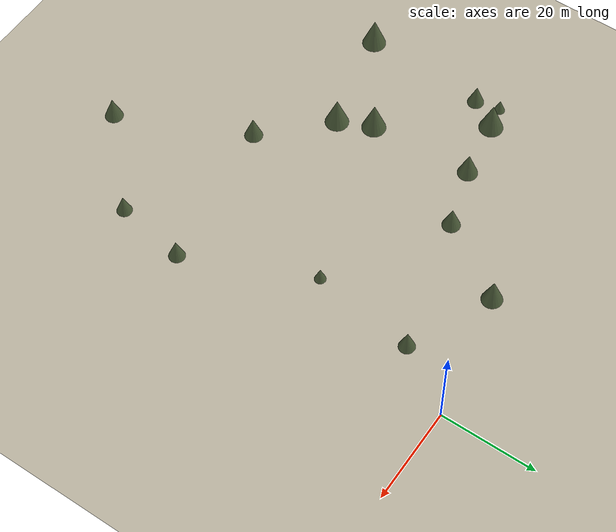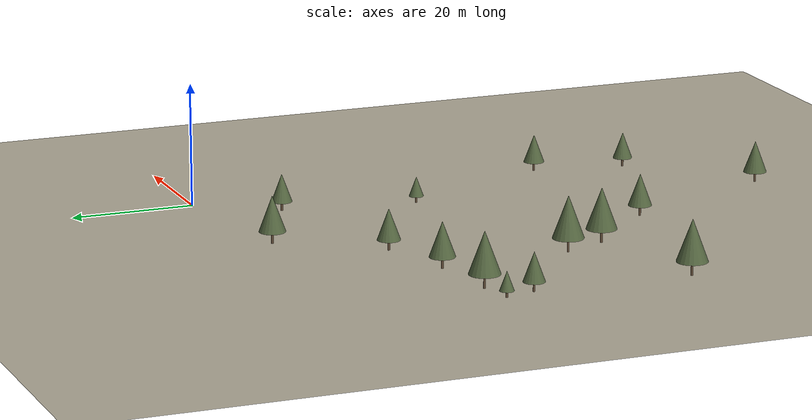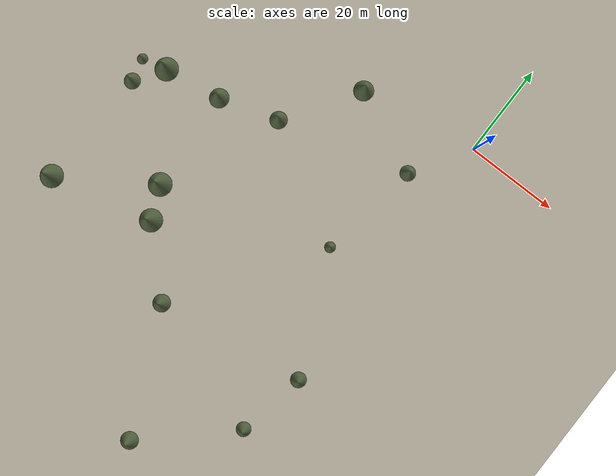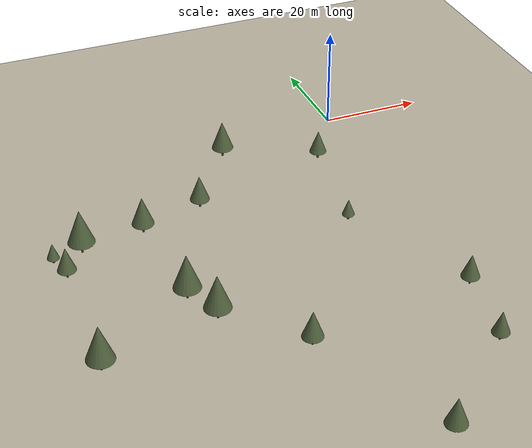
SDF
<sdf version="1.9">
 <world name="scout_range_physics">
  <model name="ground">
   <static>true</static>
   <link name="link">
    <collision name="c">
     <geometry><plane><normal>0 0 1</normal><size>400 400</size></plane></geometry>
     <surface><friction><ode><mu>1.0</mu><mu2>1.0</mu2></ode></friction></surface>
    </collision>
    <visual name="v">
     <geometry><plane><normal>0 0 1</normal><size>400 400</size></plane></geometry>
     <material>
      <ambient>0.72 0.69 0.62 1</ambient>
      <diffuse>0.72 0.69 0.62 1</diffuse>
      <specular>0.1 0.1 0.1 1</specular>
     </material>
     <plugin filename="gz-sim-thermal-system" name="gz::sim::systems::Thermal">
      <temperature>302.0</temperature>
     </plugin>
    </visual>
   </link>
  </model>
  <model name="tree_1">
   <static>true</static>
   <pose>0.19 -59.73 0 0 0 0</pose>
   <link name="link">
    <collision name="c">
     <pose>0 0 3.01 0 0 0</pose>
     <geometry><cylinder><radius>0.36</radius><length>6.03</length></cylinder></geometry>
    </collision>
    <visual name="trunk">
     <pose>0 0 1.33 0 0 0</pose>
     <geometry><cylinder><radius>0.18</radius><length>2.71</length></cylinder></geometry>
     <material>
      <ambient>0.36 0.28 0.2 1</ambient>
      <diffuse>0.36 0.28 0.2 1</diffuse>
      <specular>0.1 0.1 0.1 1</specular>
     </material>
     <plugin filename="gz-sim-thermal-system" name="gz::sim::systems::Thermal">
      <temperature>284.0</temperature>
     </plugin>
    </visual>
    <visual name="crown">
     <pose>0 0 3.74 0 0 0</pose>
     <geometry><cone><radius>1.69</radius><length>4.52</length></cone></geometry>
     <material>
      <ambient>0.33 0.4 0.25 1</ambient>
      <diffuse>0.33 0.4 0.25 1</diffuse>
      <specular>0.1 0.1 0.1 1</specular>
     </material>
     <plugin filename="gz-sim-thermal-system" name="gz::sim::systems::Thermal">
      <temperature>283.0</temperature>
     </plugin>
    </visual>
   </link>
  </model>
  <model name="tree_10">
   <static>true</static>
   <pose>-47.89 -23.82 0 0 0 0</pose>
   <link name="link">
    <collision name="c">
     <pose>0 0 3.70 0 0 0</pose>
     <geometry><cylinder><radius>0.44</radius><length>7.40</length></cylinder></geometry>
    </collision>
    <visual name="trunk">
     <pose>0 0 1.63 0 0 0</pose>
     <geometry><cylinder><radius>0.18</radius><length>3.33</length></cylinder></geometry>
     <material>
      <ambient>0.36 0.28 0.2 1</ambient>
      <diffuse>0.36 0.28 0.2 1</diffuse>
      <specular>0.1 0.1 0.1 1</specular>
     </material>
     <plugin filename="gz-sim-thermal-system" name="gz::sim::systems::Thermal">
      <temperature>284.0</temperature>
     </plugin>
    </visual>
    <visual name="crown">
     <pose>0 0 4.59 0 0 0</pose>
     <geometry><cone><radius>2.07</radius><length>5.55</length></cone></geometry>
     <material>
      <ambient>0.33 0.4 0.25 1</ambient>
      <diffuse>0.33 0.4 0.25 1</diffuse>
      <specular>0.1 0.1 0.1 1</specular>
     </material>
     <plugin filename="gz-sim-thermal-system" name="gz::sim::systems::Thermal">
      <temperature>283.0</temperature>
     </plugin>
    </visual>
   </link>
  </model>
  <model name="tree_16">
   <static>true</static>
   <pose>-2.55 -74.61 0 0 0 0</pose>
   <link name="link">
    <collision name="c">
     <pose>0 0 2.83 0 0 0</pose>
     <geometry><cylinder><radius>0.34</radius><length>5.65</length></cylinder></geometry>
    </collision>
    <visual name="trunk">
     <pose>0 0 1.24 0 0 0</pose>
     <geometry><cylinder><radius>0.18</radius><length>2.54</length></cylinder></geometry>
     <material>
      <ambient>0.36 0.28 0.2 1</ambient>
      <diffuse>0.36 0.28 0.2 1</diffuse>
      <specular>0.1 0.1 0.1 1</specular>
     </material>
     <plugin filename="gz-sim-thermal-system" name="gz::sim::systems::Thermal">
      <temperature>284.0</temperature>
     </plugin>
    </visual>
    <visual name="crown">
     <pose>0 0 3.51 0 0 0</pose>
     <geometry><cone><radius>1.58</radius><length>4.24</length></cone></geometry>
     <material>
      <ambient>0.33 0.4 0.25 1</ambient>
      <diffuse>0.33 0.4 0.25 1</diffuse>
      <specular>0.1 0.1 0.1 1</specular>
     </material>
     <plugin filename="gz-sim-thermal-system" name="gz::sim::systems::Thermal">
      <temperature>283.0</temperature>
     </plugin>
    </visual>
   </link>
  </model>
  <model name="tree_19">
   <static>true</static>
   <pose>-11.23 -34.19 0 0 0 0</pose>
   <link name="link">
    <collision name="c">
     <pose>0 0 2.11 0 0 0</pose>
     <geometry><cylinder><radius>0.25</radius><length>4.22</length></cylinder></geometry>
    </collision>
    <visual name="trunk">
     <pose>0 0 0.93 0 0 0</pose>
     <geometry><cylinder><radius>0.18</radius><length>1.90</length></cylinder></geometry>
     <material>
      <ambient>0.36 0.28 0.2 1</ambient>
      <diffuse>0.36 0.28 0.2 1</diffuse>
      <specular>0.1 0.1 0.1 1</specular>
     </material>
     <plugin filename="gz-sim-thermal-system" name="gz::sim::systems::Thermal">
      <temperature>284.0</temperature>
     </plugin>
    </visual>
    <visual name="crown">
     <pose>0 0 2.62 0 0 0</pose>
     <geometry><cone><radius>1.18</radius><length>3.16</length></cone></geometry>
     <material>
      <ambient>0.33 0.4 0.25 1</ambient>
      <diffuse>0.33 0.4 0.25 1</diffuse>
      <specular>0.1 0.1 0.1 1</specular>
     </material>
     <plugin filename="gz-sim-thermal-system" name="gz::sim::systems::Thermal">
      <temperature>283.0</temperature>
     </plugin>
    </visual>
   </link>
  </model>
  <model name="tree_20">
   <static>true</static>
   <pose>-19.71 -90.60 0 0 0 0</pose>
   <link name="link">
    <collision name="c">
     <pose>0 0 3.37 0 0 0</pose>
     <geometry><cylinder><radius>0.40</radius><length>6.74</length></cylinder></geometry>
    </collision>
    <visual name="trunk">
     <pose>0 0 1.48 0 0 0</pose>
     <geometry><cylinder><radius>0.18</radius><length>3.03</length></cylinder></geometry>
     <material>
      <ambient>0.36 0.28 0.2 1</ambient>
      <diffuse>0.36 0.28 0.2 1</diffuse>
      <specular>0.1 0.1 0.1 1</specular>
     </material>
     <plugin filename="gz-sim-thermal-system" name="gz::sim::systems::Thermal">
      <temperature>284.0</temperature>
     </plugin>
    </visual>
    <visual name="crown">
     <pose>0 0 4.18 0 0 0</pose>
     <geometry><cone><radius>1.89</radius><length>5.05</length></cone></geometry>
     <material>
      <ambient>0.33 0.4 0.25 1</ambient>
      <diffuse>0.33 0.4 0.25 1</diffuse>
      <specular>0.1 0.1 0.1 1</specular>
     </material>
     <plugin filename="gz-sim-thermal-system" name="gz::sim::systems::Thermal">
      <temperature>283.0</temperature>
     </plugin>
    </visual>
   </link>
  </model>
  <model name="tree_24">
   <static>true</static>
   <pose>-65.26 -57.34 0 0 0 0</pose>
   <link name="link">
    <collision name="c">
     <pose>0 0 4.42 0 0 0</pose>
     <geometry><cylinder><radius>0.53</radius><length>8.84</length></cylinder></geometry>
    </collision>
    <visual name="trunk">
     <pose>0 0 1.94 0 0 0</pose>
     <geometry><cylinder><radius>0.18</radius><length>3.98</length></cylinder></geometry>
     <material>
      <ambient>0.36 0.28 0.2 1</ambient>
      <diffuse>0.36 0.28 0.2 1</diffuse>
      <specular>0.1 0.1 0.1 1</specular>
     </material>
     <plugin filename="gz-sim-thermal-system" name="gz::sim::systems::Thermal">
      <temperature>284.0</temperature>
     </plugin>
    </visual>
    <visual name="crown">
     <pose>0 0 5.48 0 0 0</pose>
     <geometry><cone><radius>2.47</radius><length>6.63</length></cone></geometry>
     <material>
      <ambient>0.33 0.4 0.25 1</ambient>
      <diffuse>0.33 0.4 0.25 1</diffuse>
      <specular>0.1 0.1 0.1 1</specular>
     </material>
     <plugin filename="gz-sim-thermal-system" name="gz::sim::systems::Thermal">
      <temperature>283.0</temperature>
     </plugin>
    </visual>
   </link>
  </model>
  <model name="tree_25">
   <static>true</static>
   <pose>-65.52 -26.94 0 0 0 0</pose>
   <link name="link">
    <collision name="c">
     <pose>0 0 2.01 0 0 0</pose>
     <geometry><cylinder><radius>0.24</radius><length>4.03</length></cylinder></geometry>
    </collision>
    <visual name="trunk">
     <pose>0 0 0.89 0 0 0</pose>
     <geometry><cylinder><radius>0.18</radius><length>1.81</length></cylinder></geometry>
     <material>
      <ambient>0.36 0.28 0.2 1</ambient>
      <diffuse>0.36 0.28 0.2 1</diffuse>
      <specular>0.1 0.1 0.1 1</specular>
     </material>
     <plugin filename="gz-sim-thermal-system" name="gz::sim::systems::Thermal">
      <temperature>284.0</temperature>
     </plugin>
    </visual>
    <visual name="crown">
     <pose>0 0 2.50 0 0 0</pose>
     <geometry><cone><radius>1.13</radius><length>3.02</length></cone></geometry>
     <material>
      <ambient>0.33 0.4 0.25 1</ambient>
      <diffuse>0.33 0.4 0.25 1</diffuse>
      <specular>0.1 0.1 0.1 1</specular>
     </material>
     <plugin filename="gz-sim-thermal-system" name="gz::sim::systems::Thermal">
      <temperature>283.0</temperature>
     </plugin>
    </visual>
   </link>
  </model>
  <model name="tree_26">
   <static>true</static>
   <pose>-25.29 -4.59 0 0 0 0</pose>
   <link name="link">
    <collision name="c">
     <pose>0 0 3.81 0 0 0</pose>
     <geometry><cylinder><radius>0.46</radius><length>7.62</length></cylinder></geometry>
    </collision>
    <visual name="trunk">
     <pose>0 0 1.68 0 0 0</pose>
     <geometry><cylinder><radius>0.18</radius><length>3.43</length></cylinder></geometry>
     <material>
      <ambient>0.36 0.28 0.2 1</ambient>
      <diffuse>0.36 0.28 0.2 1</diffuse>
      <specular>0.1 0.1 0.1 1</specular>
     </material>
     <plugin filename="gz-sim-thermal-system" name="gz::sim::systems::Thermal">
      <temperature>284.0</temperature>
     </plugin>
    </visual>
    <visual name="crown">
     <pose>0 0 4.73 0 0 0</pose>
     <geometry><cone><radius>2.13</radius><length>5.72</length></cone></geometry>
     <material>
      <ambient>0.33 0.4 0.25 1</ambient>
      <diffuse>0.33 0.4 0.25 1</diffuse>
      <specular>0.1 0.1 0.1 1</specular>
     </material>
     <plugin filename="gz-sim-thermal-system" name="gz::sim::systems::Thermal">
      <temperature>283.0</temperature>
     </plugin>
    </visual>
   </link>
  </model>
  <model name="tree_27">
   <static>true</static>
   <pose>-59.96 -25.70 0 0 0 0</pose>
   <link name="link">
    <collision name="c">
     <pose>0 0 4.44 0 0 0</pose>
     <geometry><cylinder><radius>0.53</radius><length>8.88</length></cylinder></geometry>
    </collision>
    <visual name="trunk">
     <pose>0 0 1.95 0 0 0</pose>
     <geometry><cylinder><radius>0.18</radius><length>4.00</length></cylinder></geometry>
     <material>
      <ambient>0.36 0.28 0.2 1</ambient>
      <diffuse>0.36 0.28 0.2 1</diffuse>
      <specular>0.1 0.1 0.1 1</specular>
     </material>
     <plugin filename="gz-sim-thermal-system" name="gz::sim::systems::Thermal">
      <temperature>284.0</temperature>
     </plugin>
    </visual>
    <visual name="crown">
     <pose>0 0 5.51 0 0 0</pose>
     <geometry><cone><radius>2.49</radius><length>6.66</length></cone></geometry>
     <material>
      <ambient>0.33 0.4 0.25 1</ambient>
      <diffuse>0.33 0.4 0.25 1</diffuse>
      <specular>0.1 0.1 0.1 1</specular>
     </material>
     <plugin filename="gz-sim-thermal-system" name="gz::sim::systems::Thermal">
      <temperature>283.0</temperature>
     </plugin>
    </visual>
   </link>
  </model>
  <model name="tree_28">
   <static>true</static>
   <pose>-64.26 -31.87 0 0 0 0</pose>
   <link name="link">
    <collision name="c">
     <pose>0 0 3.07 0 0 0</pose>
     <geometry><cylinder><radius>0.37</radius><length>6.15</length></cylinder></geometry>
    </collision>
    <visual name="trunk">
     <pose>0 0 1.35 0 0 0</pose>
     <geometry><cylinder><radius>0.18</radius><length>2.77</length></cylinder></geometry>
     <material>
      <ambient>0.36 0.28 0.2 1</ambient>
      <diffuse>0.36 0.28 0.2 1</diffuse>
      <specular>0.1 0.1 0.1 1</specular>
     </material>
     <plugin filename="gz-sim-thermal-system" name="gz::sim::systems::Thermal">
      <temperature>284.0</temperature>
     </plugin>
    </visual>
    <visual name="crown">
     <pose>0 0 3.81 0 0 0</pose>
     <geometry><cone><radius>1.72</radius><length>4.61</length></cone></geometry>
     <material>
      <ambient>0.33 0.4 0.25 1</ambient>
      <diffuse>0.33 0.4 0.25 1</diffuse>
      <specular>0.1 0.1 0.1 1</specular>
     </material>
     <plugin filename="gz-sim-thermal-system" name="gz::sim::systems::Thermal">
      <temperature>283.0</temperature>
     </plugin>
    </visual>
   </link>
  </model>
  <model name="tree_29">
   <static>true</static>
   <pose>-31.62 -64.31 0 0 0 0</pose>
   <link name="link">
    <collision name="c">
     <pose>0 0 3.38 0 0 0</pose>
     <geometry><cylinder><radius>0.41</radius><length>6.76</length></cylinder></geometry>
    </collision>
    <visual name="trunk">
     <pose>0 0 1.49 0 0 0</pose>
     <geometry><cylinder><radius>0.18</radius><length>3.04</length></cylinder></geometry>
     <material>
      <ambient>0.36 0.28 0.2 1</ambient>
      <diffuse>0.36 0.28 0.2 1</diffuse>
      <specular>0.1 0.1 0.1 1</specular>
     </material>
     <plugin filename="gz-sim-thermal-system" name="gz::sim::systems::Thermal">
      <temperature>284.0</temperature>
     </plugin>
    </visual>
    <visual name="crown">
     <pose>0 0 4.19 0 0 0</pose>
     <geometry><cone><radius>1.89</radius><length>5.07</length></cone></geometry>
     <material>
      <ambient>0.33 0.4 0.25 1</ambient>
      <diffuse>0.33 0.4 0.25 1</diffuse>
      <specular>0.1 0.1 0.1 1</specular>
     </material>
     <plugin filename="gz-sim-thermal-system" name="gz::sim::systems::Thermal">
      <temperature>283.0</temperature>
     </plugin>
    </visual>
   </link>
  </model>
  <model name="tree_33">
   <static>true</static>
   <pose>-46.62 -45.21 0 0 0 0</pose>
   <link name="link">
    <collision name="c">
     <pose>0 0 4.49 0 0 0</pose>
     <geometry><cylinder><radius>0.54</radius><length>8.97</length></cylinder></geometry>
    </collision>
    <visual name="trunk">
     <pose>0 0 1.97 0 0 0</pose>
     <geometry><cylinder><radius>0.18</radius><length>4.04</length></cylinder></geometry>
     <material>
      <ambient>0.36 0.28 0.2 1</ambient>
      <diffuse>0.36 0.28 0.2 1</diffuse>
      <specular>0.1 0.1 0.1 1</specular>
     </material>
     <plugin filename="gz-sim-thermal-system" name="gz::sim::systems::Thermal">
      <temperature>284.0</temperature>
     </plugin>
    </visual>
    <visual name="crown">
     <pose>0 0 5.56 0 0 0</pose>
     <geometry><cone><radius>2.51</radius><length>6.73</length></cone></geometry>
     <material>
      <ambient>0.33 0.4 0.25 1</ambient>
      <diffuse>0.33 0.4 0.25 1</diffuse>
      <specular>0.1 0.1 0.1 1</specular>
     </material>
     <plugin filename="gz-sim-thermal-system" name="gz::sim::systems::Thermal">
      <temperature>283.0</temperature>
     </plugin>
    </visual>
   </link>
  </model>
  <model name="tree_37">
   <static>true</static>
   <pose>-7.83 -12.44 0 0 0 0</pose>
   <link name="link">
    <collision name="c">
     <pose>0 0 2.99 0 0 0</pose>
     <geometry><cylinder><radius>0.36</radius><length>5.98</length></cylinder></geometry>
    </collision>
    <visual name="trunk">
     <pose>0 0 1.32 0 0 0</pose>
     <geometry><cylinder><radius>0.18</radius><length>2.69</length></cylinder></geometry>
     <material>
      <ambient>0.36 0.28 0.2 1</ambient>
      <diffuse>0.36 0.28 0.2 1</diffuse>
      <specular>0.1 0.1 0.1 1</specular>
     </material>
     <plugin filename="gz-sim-thermal-system" name="gz::sim::systems::Thermal">
      <temperature>284.0</temperature>
     </plugin>
    </visual>
    <visual name="crown">
     <pose>0 0 3.71 0 0 0</pose>
     <geometry><cone><radius>1.67</radius><length>4.49</length></cone></geometry>
     <material>
      <ambient>0.33 0.4 0.25 1</ambient>
      <diffuse>0.33 0.4 0.25 1</diffuse>
      <specular>0.1 0.1 0.1 1</specular>
     </material>
     <plugin filename="gz-sim-thermal-system" name="gz::sim::systems::Thermal">
      <temperature>283.0</temperature>
     </plugin>
    </visual>
   </link>
  </model>
  <model name="tree_40">
   <static>true</static>
   <pose>-43.63 -52.17 0 0 0 0</pose>
   <link name="link">
    <collision name="c">
     <pose>0 0 4.39 0 0 0</pose>
     <geometry><cylinder><radius>0.53</radius><length>8.78</length></cylinder></geometry>
    </collision>
    <visual name="trunk">
     <pose>0 0 1.93 0 0 0</pose>
     <geometry><cylinder><radius>0.18</radius><length>3.95</length></cylinder></geometry>
     <material>
      <ambient>0.36 0.28 0.2 1</ambient>
      <diffuse>0.36 0.28 0.2 1</diffuse>
      <specular>0.1 0.1 0.1 1</specular>
     </material>
     <plugin filename="gz-sim-thermal-system" name="gz::sim::systems::Thermal">
      <temperature>284.0</temperature>
     </plugin>
    </visual>
    <visual name="crown">
     <pose>0 0 5.44 0 0 0</pose>
     <geometry><cone><radius>2.46</radius><length>6.58</length></cone></geometry>
     <material>
      <ambient>0.33 0.4 0.25 1</ambient>
      <diffuse>0.33 0.4 0.25 1</diffuse>
      <specular>0.1 0.1 0.1 1</specular>
     </material>
     <plugin filename="gz-sim-thermal-system" name="gz::sim::systems::Thermal">
      <temperature>283.0</temperature>
     </plugin>
    </visual>
   </link>
  </model>
  <model name="tree_43">
   <static>true</static>
   <pose>-35.52 -19.95 0 0 0 0</pose>
   <link name="link">
    <collision name="c">
     <pose>0 0 3.31 0 0 0</pose>
     <geometry><cylinder><radius>0.40</radius><length>6.63</length></cylinder></geometry>
    </collision>
    <visual name="trunk">
     <pose>0 0 1.46 0 0 0</pose>
     <geometry><cylinder><radius>0.18</radius><length>2.98</length></cylinder></geometry>
     <material>
      <ambient>0.36 0.28 0.2 1</ambient>
      <diffuse>0.36 0.28 0.2 1</diffuse>
      <specular>0.1 0.1 0.1 1</specular>
     </material>
     <plugin filename="gz-sim-thermal-system" name="gz::sim::systems::Thermal">
      <temperature>284.0</temperature>
     </plugin>
    </visual>
    <visual name="crown">
     <pose>0 0 4.11 0 0 0</pose>
     <geometry><cone><radius>1.86</radius><length>4.97</length></cone></geometry>
     <material>
      <ambient>0.33 0.4 0.25 1</ambient>
      <diffuse>0.33 0.4 0.25 1</diffuse>
      <specular>0.1 0.1 0.1 1</specular>
     </material>
     <plugin filename="gz-sim-thermal-system" name="gz::sim::systems::Thermal">
      <temperature>283.0</temperature>
     </plugin>
    </visual>
   </link>
  </model>
 </world>
</sdf>
